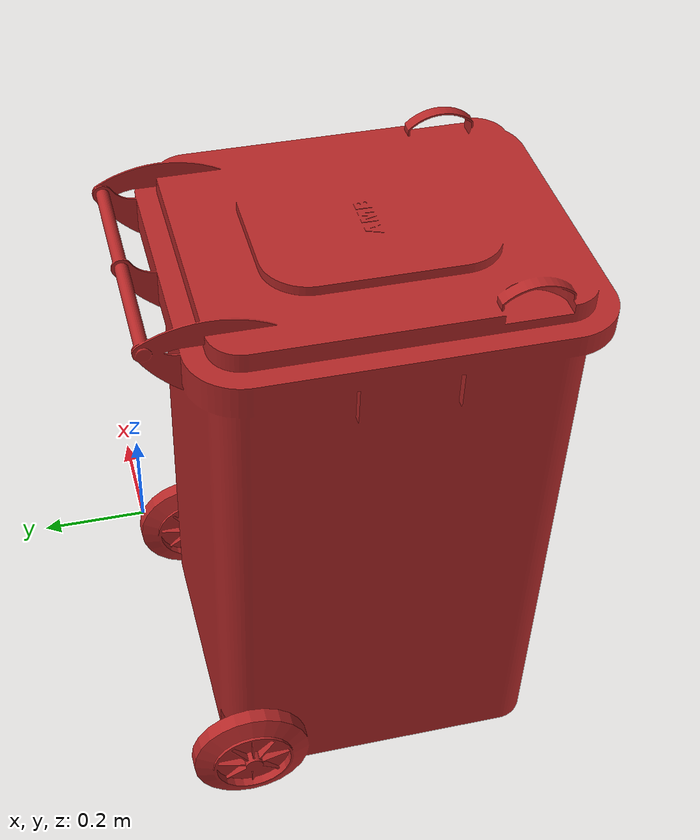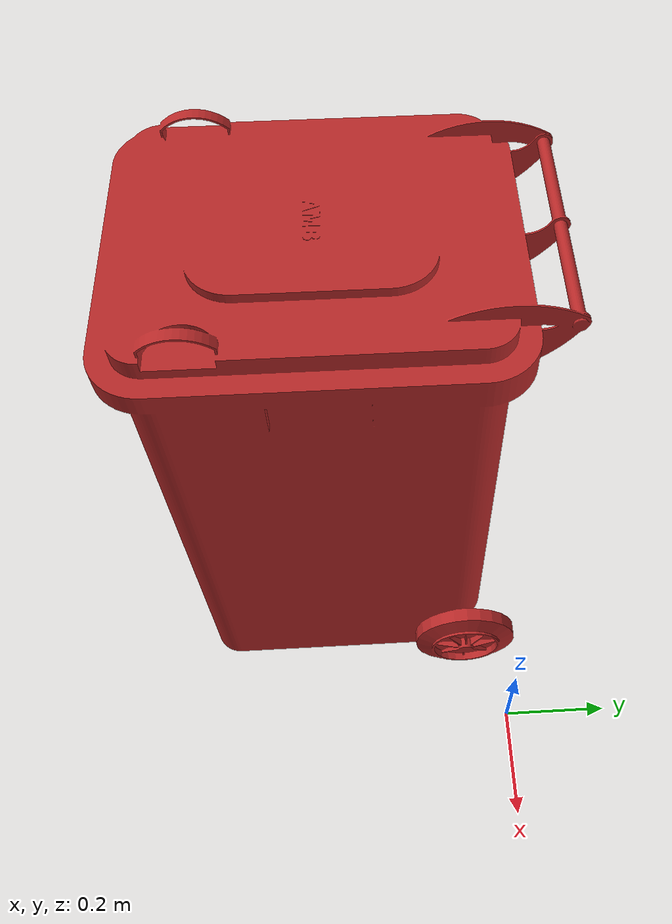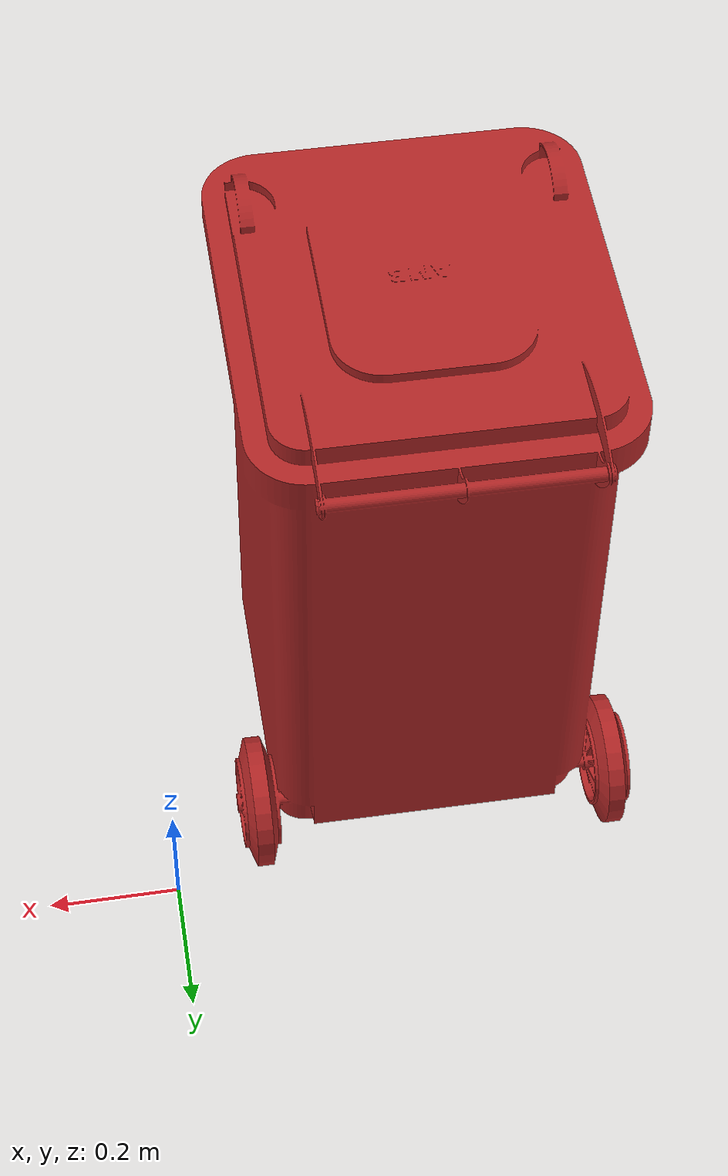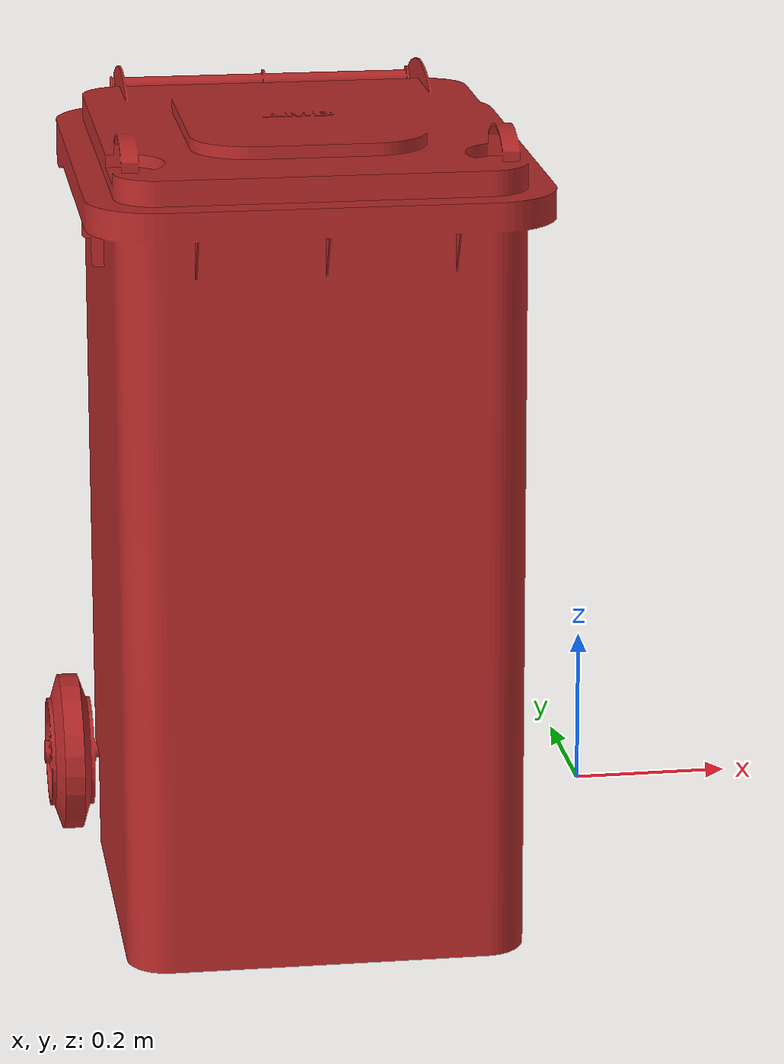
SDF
<?xml version='1.0'?>
<sdf version='1.6'>
  <model name='recycle_bin_red'>
    <link name='link_4'>
      <pose frame=''>-0.65 -0.6 0 0 -0 0</pose>
      <visual name='visual'>
        <pose frame=''>0 0 0 0 -0 0</pose>
        <geometry>
          <mesh>
            <uri>model://recycle_bin_red/meshes/recycle.stl</uri>
            <scale>1 1 1</scale>
          </mesh>
        </geometry>
        <material>
          <lighting>1</lighting>
           <ambient>0.709 0.156 0.156 1</ambient>
          <diffuse>0.709 0.156 0.156 1</diffuse>
          <specular>0.01 0.01 0.01 1</specular>
          <emissive>0 0 0 1</emissive>
          <shader type='vertex'>
            <normal_map>__default__</normal_map>
          </shader>
        </material>
        <cast_shadows>1</cast_shadows>
        <transparency>0</transparency>
      </visual>
      <collision name='collision'>
        <laser_retro>0</laser_retro>
        <max_contacts>10</max_contacts>
        <pose frame=''>0 0 0 0 -0 0</pose>
        <geometry>
          <mesh>
            <uri>model://recycle_bin_red/meshes/recycle.stl</uri>
            <scale>1 1 1</scale>
          </mesh>
        </geometry>
         </collision>
    </link>
    <static>1</static>
    <allow_auto_disable>1</allow_auto_disable>
  </model>
</sdf>
